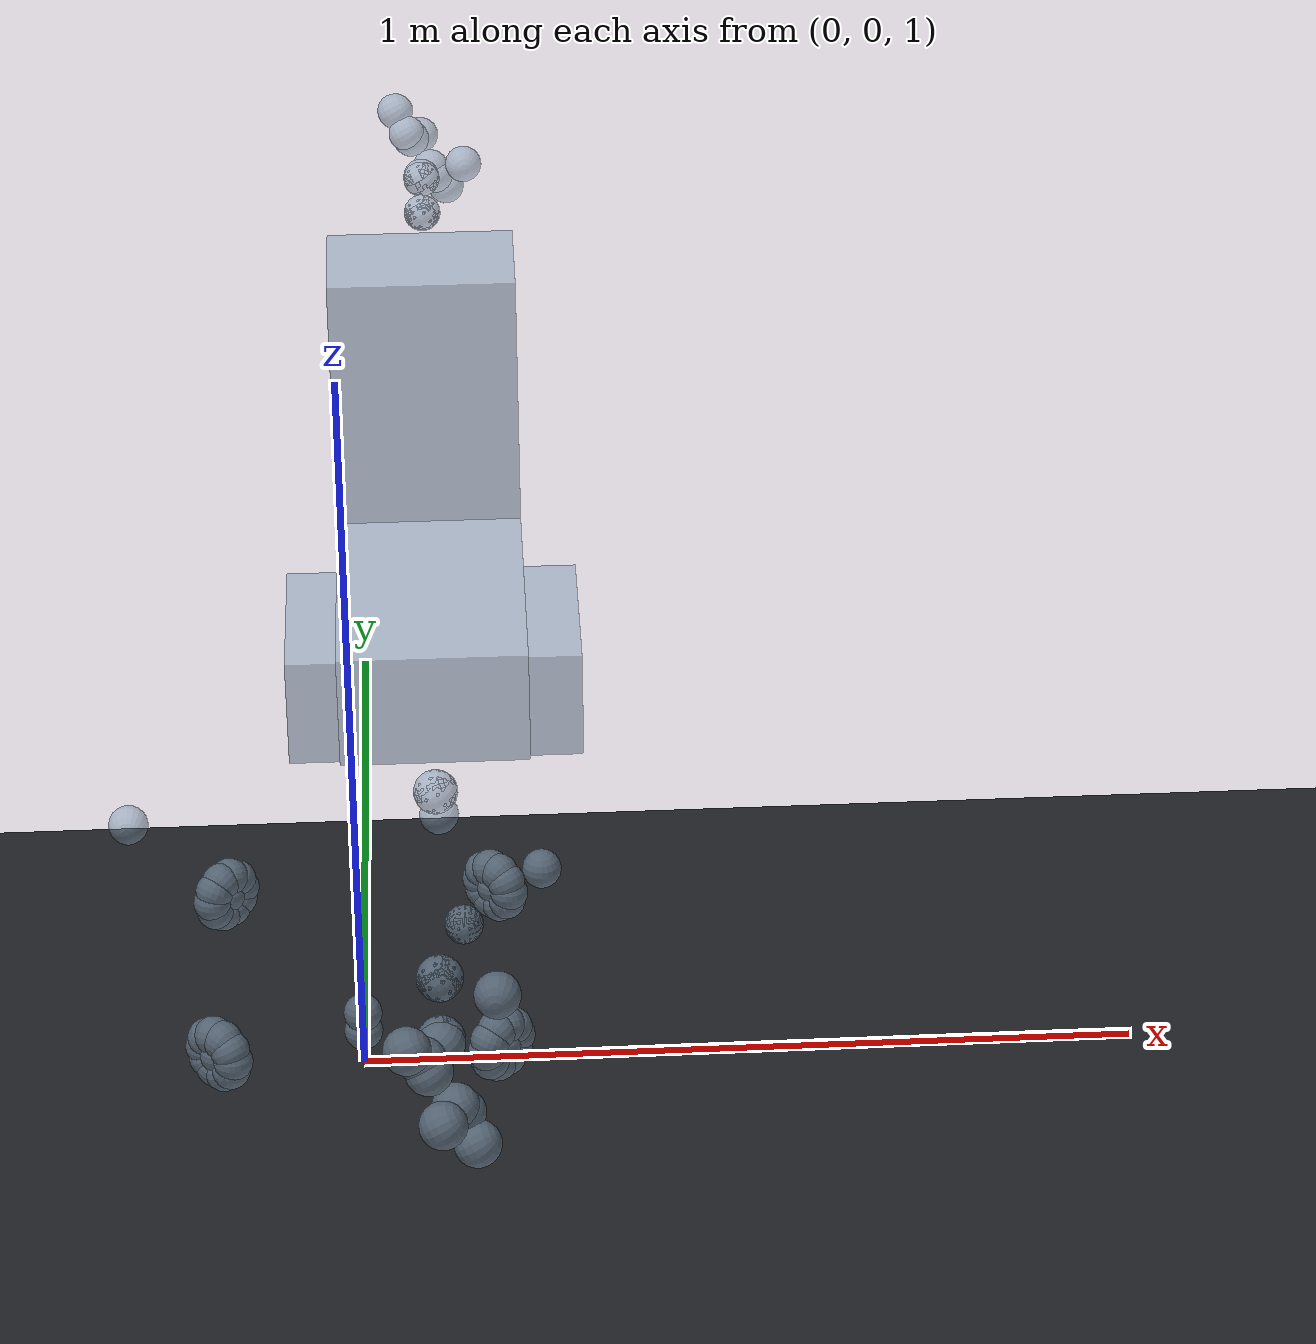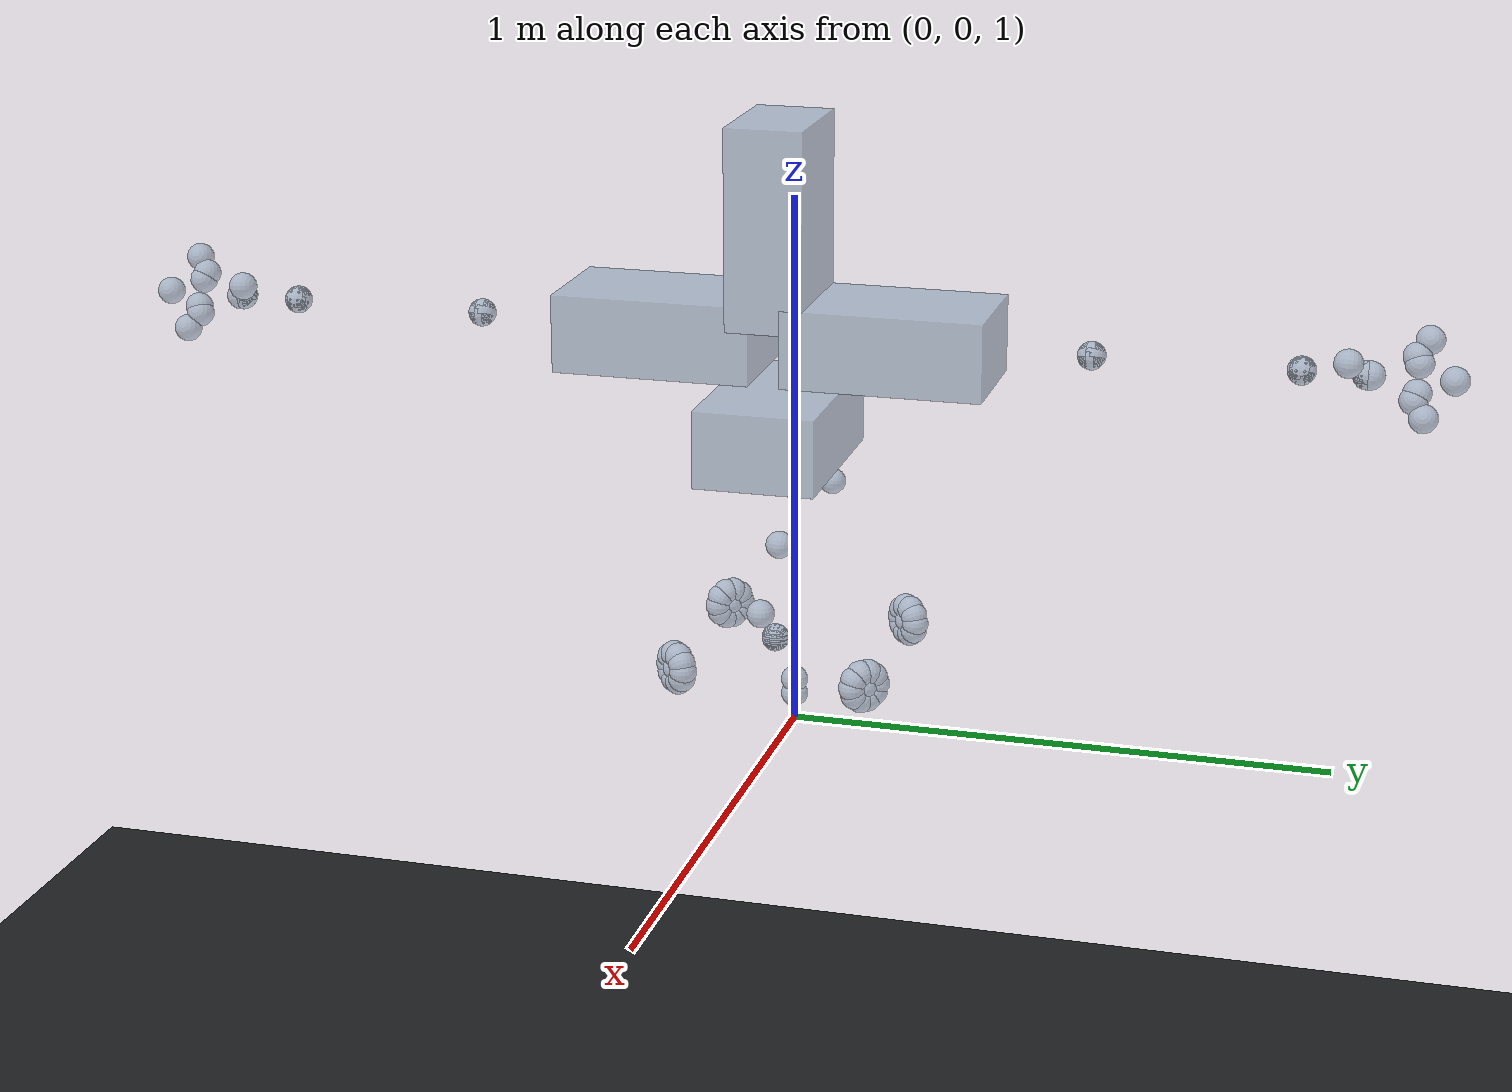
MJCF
<?xml version='1.0' encoding='utf-8'?>
<mujoco model="galbot_g1">
  <compiler angle="radian" />
  <option timestep="0.008333333" gravity="0 0 -9.81" />
  <default>
    <joint damping="0.3" armature="0.01" />
    <geom friction="0.8 0.01 0.001" density="250" />
  </default>
  <worldbody>
    <geom name="floor" type="plane" size="3 3 0.02" rgba="0.12 0.13 0.14 1" />
    <body name="base_footprint" pos="0 0 1.05">
      <freejoint name="base_footprint_freejoint" />
      <geom name="base_footprint_proxy" type="sphere" size="0.025" rgba="0.55 0.65 0.75 0.55" />
      <body name="base_link" pos="0 0 0.028166" quat="1 0 0 0">
        <geom name="base_link_proxy" type="sphere" size="0.025" rgba="0.55 0.65 0.75 0.55" />
        <body name="omni_chassis_base_link" pos="0 0 0" quat="1 0 0 0">
          <geom name="omni_chassis_base_link_proxy" type="sphere" size="0.025" rgba="0.55 0.65 0.75 0.55" />
          <body name="omni_chassis_leg_mount_link" pos="0.134 0 0.1325" quat="1 0 0 0">
            <geom name="omni_chassis_leg_mount_link_proxy" type="sphere" size="0.025" rgba="0.55 0.65 0.75 0.55" />
            <body name="leg_base_link" pos="0 0 0" quat="1 0 0 0">
              <geom name="leg_base_link_proxy" type="sphere" size="0.025" rgba="0.55 0.65 0.75 0.55" />
              <body name="leg_link1" pos="0 0 0" quat="-0.1352789408 0.1352789408 0.6940458257 0.6940458257">
                <joint name="leg_joint1" type="hinge" axis="0 0 1" damping="0.3" armature="0.01" limited="true" range="0 0.9374" />
                <geom name="leg_link1_proxy" type="sphere" size="0.025" rgba="0.55 0.65 0.75 0.55" />
                <body name="leg_link2" pos="0.45 0 0" quat="0 0.1913097075 0.9815297223 0">
                  <joint name="leg_joint2" type="hinge" axis="0 0 1" damping="0.3" armature="0.01" limited="true" range="0 2.5847" />
                  <geom name="leg_link2_proxy" type="sphere" size="0.025" rgba="0.55 0.65 0.75 0.55" />
                  <body name="leg_link3" pos="0.39 0 0" quat="0 0 1 0">
                    <joint name="leg_joint3" type="hinge" axis="0 0 1" damping="0.3" armature="0.01" limited="true" range="0 2.3262" />
                    <geom name="leg_link3_proxy" type="sphere" size="0.025" rgba="0.55 0.65 0.75 0.55" />
                    <body name="leg_link4" pos="0 0.224 0" quat="0.5 -0.5 -0.5 -0.5">
                      <joint name="leg_joint4" type="hinge" axis="0 0 1" damping="0.3" armature="0.01" limited="true" range="-1.5906 1.5906" />
                      <geom name="leg_link4_proxy" type="sphere" size="0.025" rgba="0.55 0.65 0.75 0.55" />
                      <body name="leg_link5" pos="0 0 0" quat="0.7071067812 0.7071067812 0 0">
                        <joint name="leg_joint5" type="hinge" axis="0 0 1" damping="0.3" armature="0.01" limited="true" range="-0.1645 0.1645" />
                        <geom name="leg_link5_proxy" type="sphere" size="0.025" rgba="0.55 0.65 0.75 0.55" />
                        <body name="leg_end_effector_mount_link" pos="0 0 0" quat="1 0 0 0">
                          <geom name="leg_end_effector_mount_link_proxy" type="sphere" size="0.025" rgba="0.55 0.65 0.75 0.55" />
                          <body name="torso_base_link" pos="0 0 0" quat="1 0 0 0">
                            <geom name="torso_base_link_proxy" type="box" size="0.11 0.07 0.18" rgba="0.55 0.65 0.75 0.55" />
                            <body name="torso_head_mount_link" pos="0 0.37711 0" quat="0.5 -0.5 -0.5 -0.5">
                              <geom name="torso_head_mount_link_proxy" type="box" size="0.11 0.07 0.18" rgba="0.55 0.65 0.75 0.55" />
                              <body name="head_base_link" pos="0 0 0" quat="1 0 0 0">
                                <geom name="head_base_link_proxy" type="sphere" size="0.055" rgba="0.55 0.65 0.75 0.55" />
                                <body name="head_link1" pos="0 0 0" quat="1 0 0 0">
                                  <joint name="head_joint1" type="hinge" axis="0 0 1" damping="0.3" armature="0.01" limited="true" range="-1.5208 1.5208" />
                                  <geom name="head_link1_proxy" type="sphere" size="0.055" rgba="0.55 0.65 0.75 0.55" />
                                  <body name="head_link2" pos="0 0 0" quat="0.7071067812 -0.7071067812 0 0">
                                    <joint name="head_joint2" type="hinge" axis="0 0 1" damping="0.3" armature="0.01" limited="true" range="-0.2143461 0.4935988" />
                                    <geom name="head_link2_proxy" type="sphere" size="0.055" rgba="0.55 0.65 0.75 0.55" />
                                    <body name="head_end_effector_mount_link" pos="0 0 0" quat="1 0 0 0">
                                      <geom name="head_end_effector_mount_link_proxy" type="sphere" size="0.055" rgba="0.55 0.65 0.75 0.55" />
                                    </body>
                                  </body>
                                </body>
                              </body>
                            </body>
                            <body name="torso_left_arm_mount_link" pos="0.20843 0.172 0" quat="0.7071067812 0 0.7071067812 0">
                              <geom name="torso_left_arm_mount_link_proxy" type="box" size="0.11 0.07 0.18" rgba="0.55 0.65 0.75 0.55" />
                              <body name="left_arm_base_link" pos="0 0 0" quat="1 0 0 0">
                                <geom name="left_arm_base_link_proxy" type="sphere" size="0.025" rgba="0.55 0.65 0.75 0.55" />
                                <body name="left_arm_link1" pos="0 0 0" quat="0.9659258263 0 0 0.2588190451">
                                  <joint name="left_arm_joint1" type="hinge" axis="0 0 1" damping="0.3" armature="0.01" limited="true" range="-3.00432619 3.00432619" />
                                  <geom name="left_arm_link1_proxy" type="sphere" size="0.025" rgba="0.55 0.65 0.75 0.55" />
                                  <body name="left_arm_link2" pos="0 0 0" quat="0 0 0.7071067812 0.7071067812">
                                    <joint name="left_arm_joint2" type="hinge" axis="0 0 1" damping="0.3" armature="0.01" limited="true" range="-1.608062789 1.608062789" />
                                    <geom name="left_arm_link2_proxy" type="sphere" size="0.025" rgba="0.55 0.65 0.75 0.55" />
                                    <body name="left_arm_link3" pos="0 0.35 0" quat="0.3535533906 -0.3535533906 0.6123724357 0.6123724357">
                                      <joint name="left_arm_joint3" type="hinge" axis="0 0 1" damping="0.3" armature="0.01" limited="true" range="-2.916972222 2.916972222" />
                                      <geom name="left_arm_link3_proxy" type="sphere" size="0.025" rgba="0.55 0.65 0.75 0.55" />
                                      <body name="left_arm_link4" pos="0 0 0" quat="0 0 0.7071067812 0.7071067812">
                                        <joint name="left_arm_joint4" type="hinge" axis="0 0 1" damping="0.3" armature="0.01" limited="true" range="-2.567993878 1.869862177" />
                                        <geom name="left_arm_link4_proxy" type="sphere" size="0.025" rgba="0.55 0.65 0.75 0.55" />
                                        <body name="left_arm_link5" pos="0 0.36 0" quat="0.7071067812 -0.7071067812 0 0">
                                          <joint name="left_arm_joint5" type="hinge" axis="0 0 1" damping="0.3" armature="0.01" limited="true" range="-2.916972222 2.916972222" />
                                          <geom name="left_arm_link5_proxy" type="sphere" size="0.025" rgba="0.55 0.65 0.75 0.55" />
                                          <body name="left_arm_link6" pos="0 0 0" quat="-0.5 -0.5 -0.5 0.5">
                                            <joint name="left_arm_joint6" type="hinge" axis="0 0 1" damping="0.3" armature="0.01" limited="true" range="-0.822664626 0.7353981634" />
                                            <geom name="left_arm_link6_proxy" type="sphere" size="0.025" rgba="0.55 0.65 0.75 0.55" />
                                            <body name="left_arm_link7" pos="0 0 0" quat="0.7071067812 0.7071067812 0 0">
                                              <joint name="left_arm_joint7" type="hinge" axis="0 0 1" damping="0.3" armature="0.01" limited="true" range="-1.538202778 1.538202778" />
                                              <geom name="left_arm_link7_proxy" type="sphere" size="0.025" rgba="0.55 0.65 0.75 0.55" />
                                              <body name="left_arm_end_effector_mount_link" pos="-0.10926 0 0" quat="0 0 1 0">
                                                <geom name="left_arm_end_effector_mount_link_proxy" type="sphere" size="0.025" rgba="0.55 0.65 0.75 0.55" />
                                                <body name="left_gripper_flange_link" pos="0 0 0" quat="0.7071067812 0.7071067812 0 0">
                                                  <geom name="left_gripper_flange_link_proxy" type="sphere" size="0.025" rgba="0.55 0.65 0.75 0.55" />
                                                  <body name="left_gripper_base_link" pos="0.0065 0 0" quat="1 0 0 0">
                                                    <geom name="left_gripper_base_link_proxy" type="sphere" size="0.025" rgba="0.55 0.65 0.75 0.55" />
                                                    <body name="left_gripper_r_knuckle_link" pos="0.0745 0 0.0385" quat="0.5741606636 0.5741606636 -0.4127221007 0.4127221007">
                                                      <joint name="left_gripper_joint" type="hinge" axis="0 0 -1" damping="0.3" armature="0.01" limited="true" range="0 1.703" />
                                                      <geom name="left_gripper_r_knuckle_link_proxy" type="sphere" size="0.025" rgba="0.55 0.65 0.75 0.55" />
                                                    </body>
                                                    <body name="left_gripper_r_inner_knuckle_link" pos="0.079 0 0.026" quat="0.5741606636 0.5741606636 -0.4127221007 0.4127221007">
                                                      <joint name="left_gripper_r_inner_knuckle_joint" type="hinge" axis="0 0 1" damping="0.3" armature="0.01" limited="true" range="-3.13 3.13" />
                                                      <geom name="left_gripper_r_inner_knuckle_link_proxy" type="sphere" size="0.025" rgba="0.55 0.65 0.75 0.55" />
                                                      <body name="left_gripper_r_finger_link" pos="0.045 0 0" quat="0.8119857974 0 0 -0.5836771923">
                                                        <joint name="left_gripper_r_finger_joint" type="hinge" axis="0 0 1" damping="0.3" armature="0.01" limited="true" range="-3.13 3.13" />
                                                        <geom name="left_gripper_r_finger_link_proxy" type="sphere" size="0.025" rgba="0.55 0.65 0.75 0.55" />
                                                      </body>
                                                    </body>
                                                    <body name="left_gripper_l_knuckle_link" pos="0.0745 0 -0.0385" quat="0.5741606636 0.5741606636 0.4127221007 -0.4127221007">
                                                      <joint name="left_gripper_l_knuckle_joint" type="hinge" axis="0 0 1" damping="0.3" armature="0.01" limited="true" range="-3.13 3.13" />
                                                      <geom name="left_gripper_l_knuckle_link_proxy" type="sphere" size="0.025" rgba="0.55 0.65 0.75 0.55" />
                                                    </body>
                                                    <body name="left_gripper_l_inner_knuckle_link" pos="0.079 0 -0.026" quat="0.5741606636 0.5741606636 0.4127221007 -0.4127221007">
                                                      <joint name="left_gripper_l_inner_knuckle_joint" type="hinge" axis="0 0 1" damping="0.3" armature="0.01" limited="true" range="-3.13 3.13" />
                                                      <geom name="left_gripper_l_inner_knuckle_link_proxy" type="sphere" size="0.025" rgba="0.55 0.65 0.75 0.55" />
                                                      <body name="left_gripper_l_finger_link" pos="0.045 0 0" quat="0.8119857974 0 0 0.5836771923">
                                                        <joint name="left_gripper_l_finger_joint" type="hinge" axis="0 0 1" damping="0.3" armature="0.01" limited="true" range="-3.13 3.13" />
                                                        <geom name="left_gripper_l_finger_link_proxy" type="sphere" size="0.025" rgba="0.55 0.65 0.75 0.55" />
                                                      </body>
                                                    </body>
                                                    <body name="left_gripper_tcp_link" pos="0.13996 0 0" quat="0.7071067812 0.7071067812 0 0">
                                                      <geom name="left_gripper_tcp_link_proxy" type="sphere" size="0.025" rgba="0.55 0.65 0.75 0.55" />
                                                    </body>
                                                  </body>
                                                </body>
                                              </body>
                                              <body name="left_arm_wrist_camera_stand" pos="0 0 0" quat="1 0 0 0">
                                                <geom name="left_arm_wrist_camera_stand_proxy" type="sphere" size="0.025" rgba="0.55 0.65 0.75 0.55" />
                                                <body name="left_wrist_camera_link" pos="-0.0822 0 -0.06842" quat="0 -0.6745818893 0 0.7382000234">
                                                  <geom name="left_wrist_camera_link_proxy" type="sphere" size="0.025" rgba="0.55 0.65 0.75 0.55" />
                                                </body>
                                              </body>
                                            </body>
                                          </body>
                                        </body>
                                      </body>
                                    </body>
                                  </body>
                                </body>
                              </body>
                            </body>
                            <body name="torso_right_arm_mount_link" pos="-0.20843 0.172 0" quat="0 0.7071067812 0 -0.7071067812">
                              <geom name="torso_right_arm_mount_link_proxy" type="box" size="0.11 0.07 0.18" rgba="0.55 0.65 0.75 0.55" />
                              <body name="right_arm_base_link" pos="0 0 0" quat="1 0 0 0">
                                <geom name="right_arm_base_link_proxy" type="sphere" size="0.025" rgba="0.55 0.65 0.75 0.55" />
                                <body name="right_arm_link1" pos="0 0 0" quat="0.9659258263 0 0 -0.2588190451">
                                  <joint name="right_arm_joint1" type="hinge" axis="0 0 1" damping="0.3" armature="0.01" limited="true" range="-3.00432619 3.00432619" />
                                  <geom name="right_arm_link1_proxy" type="sphere" size="0.025" rgba="0.55 0.65 0.75 0.55" />
                                  <body name="right_arm_link2" pos="0 0 0" quat="0 0 0.7071067812 -0.7071067812">
                                    <joint name="right_arm_joint2" type="hinge" axis="0 0 1" damping="0.3" armature="0.01" limited="true" range="-1.608062789 1.608062789" />
                                    <geom name="right_arm_link2_proxy" type="sphere" size="0.025" rgba="0.55 0.65 0.75 0.55" />
                                    <body name="right_arm_link3" pos="0 -0.35 0" quat="0.3535533906 0.3535533906 0.6123724357 -0.6123724357">
                                      <joint name="right_arm_joint3" type="hinge" axis="0 0 1" damping="0.3" armature="0.01" limited="true" range="-2.916972222 2.916972222" />
                                      <geom name="right_arm_link3_proxy" type="sphere" size="0.025" rgba="0.55 0.65 0.75 0.55" />
                                      <body name="right_arm_link4" pos="0 0 0" quat="0 0 -0.7071067812 0.7071067812">
                                        <joint name="right_arm_joint4" type="hinge" axis="0 0 1" damping="0.3" armature="0.01" limited="true" range="-1.869862177 2.567993878" />
                                        <geom name="right_arm_link4_proxy" type="sphere" size="0.025" rgba="0.55 0.65 0.75 0.55" />
                                        <body name="right_arm_link5" pos="0 -0.36 0" quat="0 0 0.7071067812 -0.7071067812">
                                          <joint name="right_arm_joint5" type="hinge" axis="0 0 1" damping="0.3" armature="0.01" limited="true" range="-2.916972222 2.916972222" />
                                          <geom name="right_arm_link5_proxy" type="sphere" size="0.025" rgba="0.55 0.65 0.75 0.55" />
                                          <body name="right_arm_link6" pos="0 0 0" quat="-0.5 -0.5 -0.5 0.5">
                                            <joint name="right_arm_joint6" type="hinge" axis="0 0 1" damping="0.3" armature="0.01" limited="true" range="-0.7353981634 0.822664626" />
                                            <geom name="right_arm_link6_proxy" type="sphere" size="0.025" rgba="0.55 0.65 0.75 0.55" />
                                            <body name="right_arm_link7" pos="0 0 0" quat="0.7071067812 -0.7071067812 0 0">
                                              <joint name="right_arm_joint7" type="hinge" axis="0 0 1" damping="0.3" armature="0.01" limited="true" range="-1.538202778 1.538202778" />
                                              <geom name="right_arm_link7_proxy" type="sphere" size="0.025" rgba="0.55 0.65 0.75 0.55" />
                                              <body name="right_arm_end_effector_mount_link" pos="-0.10926 0 0" quat="0 0 1 0">
                                                <geom name="right_arm_end_effector_mount_link_proxy" type="sphere" size="0.025" rgba="0.55 0.65 0.75 0.55" />
                                                <body name="right_gripper_flange_link" pos="0 0 0" quat="0.7071067812 0.7071067812 0 0">
                                                  <geom name="right_gripper_flange_link_proxy" type="sphere" size="0.025" rgba="0.55 0.65 0.75 0.55" />
                                                  <body name="right_gripper_base_link" pos="0.0065 0 0" quat="1 0 0 0">
                                                    <geom name="right_gripper_base_link_proxy" type="sphere" size="0.025" rgba="0.55 0.65 0.75 0.55" />
                                                    <body name="right_gripper_r_knuckle_link" pos="0.0745 0 0.0385" quat="0.5741606636 0.5741606636 -0.4127221007 0.4127221007">
                                                      <joint name="right_gripper_joint" type="hinge" axis="0 0 -1" damping="0.3" armature="0.01" limited="true" range="0 1.703" />
                                                      <geom name="right_gripper_r_knuckle_link_proxy" type="sphere" size="0.025" rgba="0.55 0.65 0.75 0.55" />
                                                    </body>
                                                    <body name="right_gripper_r_inner_knuckle_link" pos="0.079 0 0.026" quat="0.5741606636 0.5741606636 -0.4127221007 0.4127221007">
                                                      <joint name="right_gripper_r_inner_knuckle_joint" type="hinge" axis="0 0 1" damping="0.3" armature="0.01" limited="true" range="-3.13 3.13" />
                                                      <geom name="right_gripper_r_inner_knuckle_link_proxy" type="sphere" size="0.025" rgba="0.55 0.65 0.75 0.55" />
                                                      <body name="right_gripper_r_finger_link" pos="0.045 0 0" quat="0.8119857974 0 0 -0.5836771923">
                                                        <joint name="right_gripper_r_finger_joint" type="hinge" axis="0 0 1" damping="0.3" armature="0.01" limited="true" range="-3.13 3.13" />
                                                        <geom name="right_gripper_r_finger_link_proxy" type="sphere" size="0.025" rgba="0.55 0.65 0.75 0.55" />
                                                      </body>
                                                    </body>
                                                    <body name="right_gripper_l_knuckle_link" pos="0.0745 0 -0.0385" quat="0.5741606636 0.5741606636 0.4127221007 -0.4127221007">
                                                      <joint name="right_gripper_l_knuckle_joint" type="hinge" axis="0 0 1" damping="0.3" armature="0.01" limited="true" range="-3.13 3.13" />
                                                      <geom name="right_gripper_l_knuckle_link_proxy" type="sphere" size="0.025" rgba="0.55 0.65 0.75 0.55" />
                                                    </body>
                                                    <body name="right_gripper_l_inner_knuckle_link" pos="0.079 0 -0.026" quat="0.5741606636 0.5741606636 0.4127221007 -0.4127221007">
                                                      <joint name="right_gripper_l_inner_knuckle_joint" type="hinge" axis="0 0 1" damping="0.3" armature="0.01" limited="true" range="-3.13 3.13" />
                                                      <geom name="right_gripper_l_inner_knuckle_link_proxy" type="sphere" size="0.025" rgba="0.55 0.65 0.75 0.55" />
                                                      <body name="right_gripper_l_finger_link" pos="0.045 0 0" quat="0.8119857974 0 0 0.5836771923">
                                                        <joint name="right_gripper_l_finger_joint" type="hinge" axis="0 0 1" damping="0.3" armature="0.01" limited="true" range="-3.13 3.13" />
                                                        <geom name="right_gripper_l_finger_link_proxy" type="sphere" size="0.025" rgba="0.55 0.65 0.75 0.55" />
                                                      </body>
                                                    </body>
                                                    <body name="right_gripper_tcp_link" pos="0.13996 0 0" quat="0.7071067812 0.7071067812 0 0">
                                                      <geom name="right_gripper_tcp_link_proxy" type="sphere" size="0.025" rgba="0.55 0.65 0.75 0.55" />
                                                    </body>
                                                  </body>
                                                </body>
                                              </body>
                                              <body name="right_arm_wrist_camera_stand" pos="0 0 0" quat="1 0 0 0">
                                                <geom name="right_arm_wrist_camera_stand_proxy" type="sphere" size="0.025" rgba="0.55 0.65 0.75 0.55" />
                                                <body name="right_wrist_camera_link" pos="-0.0822 0 -0.06842" quat="0 -0.6745818893 0 0.7382000234">
                                                  <geom name="right_wrist_camera_link_proxy" type="sphere" size="0.025" rgba="0.55 0.65 0.75 0.55" />
                                                </body>
                                              </body>
                                            </body>
                                          </body>
                                        </body>
                                      </body>
                                    </body>
                                  </body>
                                </body>
                              </body>
                            </body>
                          </body>
                        </body>
                      </body>
                    </body>
                  </body>
                </body>
              </body>
            </body>
          </body>
          <body name="wheel_1" pos="0.176493 0.176493 0.071834" quat="-0.3826834324 0 0 0.9238795325">
            <joint name="wheel1_joint" type="hinge" axis="1 0 0" damping="0.3" armature="0.01" />
            <geom name="wheel_1_proxy" type="sphere" size="0.025" rgba="0.55 0.65 0.75 0.55" />
            <body name="wheel_1_passive_0" pos="0 0.025 0" quat="1 0 0 0">
              <joint name="wheel_1_passive_0_joint" type="hinge" axis="0 0 1" damping="0.3" armature="0.01" />
              <geom name="wheel_1_passive_0_proxy" type="sphere" size="0.025" rgba="0.55 0.65 0.75 0.55" />
            </body>
            <body name="wheel_1_passive_1" pos="0 0.02022542486 0.01469463131" quat="0.9510565163 0.3090169944 0 0">
              <joint name="wheel_1_passive_1_joint" type="hinge" axis="0 0 1" damping="0.3" armature="0.01" />
              <geom name="wheel_1_passive_1_proxy" type="sphere" size="0.025" rgba="0.55 0.65 0.75 0.55" />
            </body>
            <body name="wheel_1_passive_2" pos="0 0.007725424859 0.02377641291" quat="0.8090169944 0.5877852523 0 0">
              <joint name="wheel_1_passive_2_joint" type="hinge" axis="0 0 1" damping="0.3" armature="0.01" />
              <geom name="wheel_1_passive_2_proxy" type="sphere" size="0.025" rgba="0.55 0.65 0.75 0.55" />
            </body>
            <body name="wheel_1_passive_3" pos="0 -0.007725424859 0.02377641291" quat="0.5877852523 0.8090169944 0 0">
              <joint name="wheel_1_passive_3_joint" type="hinge" axis="0 0 1" damping="0.3" armature="0.01" />
              <geom name="wheel_1_passive_3_proxy" type="sphere" size="0.025" rgba="0.55 0.65 0.75 0.55" />
            </body>
            <body name="wheel_1_passive_4" pos="0 -0.02022542486 0.01469463131" quat="0.3090169944 0.9510565163 0 0">
              <joint name="wheel_1_passive_4_joint" type="hinge" axis="0 0 1" damping="0.3" armature="0.01" />
              <geom name="wheel_1_passive_4_proxy" type="sphere" size="0.025" rgba="0.55 0.65 0.75 0.55" />
            </body>
            <body name="wheel_1_passive_5" pos="0 -0.025 0" quat="0 1 0 0">
              <joint name="wheel_1_passive_5_joint" type="hinge" axis="0 0 1" damping="0.3" armature="0.01" />
              <geom name="wheel_1_passive_5_proxy" type="sphere" size="0.025" rgba="0.55 0.65 0.75 0.55" />
            </body>
            <body name="wheel_1_passive_6" pos="0 -0.02022542486 -0.01469463131" quat="-0.3090169944 0.9510565163 0 0">
              <joint name="wheel_1_passive_6_joint" type="hinge" axis="0 0 1" damping="0.3" armature="0.01" />
              <geom name="wheel_1_passive_6_proxy" type="sphere" size="0.025" rgba="0.55 0.65 0.75 0.55" />
            </body>
            <body name="wheel_1_passive_7" pos="0 -0.007725424859 -0.02377641291" quat="0.5877852523 -0.8090169944 0 0">
              <joint name="wheel_1_passive_7_joint" type="hinge" axis="0 0 1" damping="0.3" armature="0.01" />
              <geom name="wheel_1_passive_7_proxy" type="sphere" size="0.025" rgba="0.55 0.65 0.75 0.55" />
            </body>
            <body name="wheel_1_passive_8" pos="0 0.007725424859 -0.02377641291" quat="0.8090169944 -0.5877852523 0 0">
              <joint name="wheel_1_passive_8_joint" type="hinge" axis="0 0 1" damping="0.3" armature="0.01" />
              <geom name="wheel_1_passive_8_proxy" type="sphere" size="0.025" rgba="0.55 0.65 0.75 0.55" />
            </body>
            <body name="wheel_1_passive_9" pos="0 0.02022542486 -0.01469463131" quat="0.9510565163 -0.3090169944 0 0">
              <joint name="wheel_1_passive_9_joint" type="hinge" axis="0 0 1" damping="0.3" armature="0.01" />
              <geom name="wheel_1_passive_9_proxy" type="sphere" size="0.025" rgba="0.55 0.65 0.75 0.55" />
            </body>
          </body>
          <body name="wheel_2" pos="-0.176493 0.176493 0.071834" quat="0.9238795325 0 0 -0.3826834324">
            <joint name="wheel2_joint" type="hinge" axis="1 0 0" damping="0.3" armature="0.01" />
            <geom name="wheel_2_proxy" type="sphere" size="0.025" rgba="0.55 0.65 0.75 0.55" />
            <body name="wheel_2_passive_0" pos="0 0.025 0" quat="1 0 0 0">
              <joint name="wheel_2_passive_0_joint" type="hinge" axis="0 0 1" damping="0.3" armature="0.01" />
              <geom name="wheel_2_passive_0_proxy" type="sphere" size="0.025" rgba="0.55 0.65 0.75 0.55" />
            </body>
            <body name="wheel_2_passive_1" pos="0 0.02022542486 0.01469463131" quat="0.9510565163 0.3090169944 0 0">
              <joint name="wheel_2_passive_1_joint" type="hinge" axis="0 0 1" damping="0.3" armature="0.01" />
              <geom name="wheel_2_passive_1_proxy" type="sphere" size="0.025" rgba="0.55 0.65 0.75 0.55" />
            </body>
            <body name="wheel_2_passive_2" pos="0 0.007725424859 0.02377641291" quat="0.8090169944 0.5877852523 0 0">
              <joint name="wheel_2_passive_2_joint" type="hinge" axis="0 0 1" damping="0.3" armature="0.01" />
              <geom name="wheel_2_passive_2_proxy" type="sphere" size="0.025" rgba="0.55 0.65 0.75 0.55" />
            </body>
            <body name="wheel_2_passive_3" pos="0 -0.007725424859 0.02377641291" quat="0.5877852523 0.8090169944 0 0">
              <joint name="wheel_2_passive_3_joint" type="hinge" axis="0 0 1" damping="0.3" armature="0.01" />
              <geom name="wheel_2_passive_3_proxy" type="sphere" size="0.025" rgba="0.55 0.65 0.75 0.55" />
            </body>
            <body name="wheel_2_passive_4" pos="0 -0.02022542486 0.01469463131" quat="0.3090169944 0.9510565163 0 0">
              <joint name="wheel_2_passive_4_joint" type="hinge" axis="0 0 1" damping="0.3" armature="0.01" />
              <geom name="wheel_2_passive_4_proxy" type="sphere" size="0.025" rgba="0.55 0.65 0.75 0.55" />
            </body>
            <body name="wheel_2_passive_5" pos="0 -0.025 0" quat="0 1 0 0">
              <joint name="wheel_2_passive_5_joint" type="hinge" axis="0 0 1" damping="0.3" armature="0.01" />
              <geom name="wheel_2_passive_5_proxy" type="sphere" size="0.025" rgba="0.55 0.65 0.75 0.55" />
            </body>
            <body name="wheel_2_passive_6" pos="0 -0.02022542486 -0.01469463131" quat="-0.3090169944 0.9510565163 0 0">
              <joint name="wheel_2_passive_6_joint" type="hinge" axis="0 0 1" damping="0.3" armature="0.01" />
              <geom name="wheel_2_passive_6_proxy" type="sphere" size="0.025" rgba="0.55 0.65 0.75 0.55" />
            </body>
            <body name="wheel_2_passive_7" pos="0 -0.007725424859 -0.02377641291" quat="0.5877852523 -0.8090169944 0 0">
              <joint name="wheel_2_passive_7_joint" type="hinge" axis="0 0 1" damping="0.3" armature="0.01" />
              <geom name="wheel_2_passive_7_proxy" type="sphere" size="0.025" rgba="0.55 0.65 0.75 0.55" />
            </body>
            <body name="wheel_2_passive_8" pos="0 0.007725424859 -0.02377641291" quat="0.8090169944 -0.5877852523 0 0">
              <joint name="wheel_2_passive_8_joint" type="hinge" axis="0 0 1" damping="0.3" armature="0.01" />
              <geom name="wheel_2_passive_8_proxy" type="sphere" size="0.025" rgba="0.55 0.65 0.75 0.55" />
            </body>
            <body name="wheel_2_passive_9" pos="0 0.02022542486 -0.01469463131" quat="0.9510565163 -0.3090169944 0 0">
              <joint name="wheel_2_passive_9_joint" type="hinge" axis="0 0 1" damping="0.3" armature="0.01" />
              <geom name="wheel_2_passive_9_proxy" type="sphere" size="0.025" rgba="0.55 0.65 0.75 0.55" />
            </body>
          </body>
          <body name="wheel_3" pos="-0.176493 -0.176493 0.071834" quat="0.9238795325 0 0 0.3826834324">
            <joint name="wheel3_joint" type="hinge" axis="1 0 0" damping="0.3" armature="0.01" />
            <geom name="wheel_3_proxy" type="sphere" size="0.025" rgba="0.55 0.65 0.75 0.55" />
            <body name="wheel_3_passive_0" pos="0 0.025 0" quat="1 0 0 0">
              <joint name="wheel_3_passive_0_joint" type="hinge" axis="0 0 1" damping="0.3" armature="0.01" />
              <geom name="wheel_3_passive_0_proxy" type="sphere" size="0.025" rgba="0.55 0.65 0.75 0.55" />
            </body>
            <body name="wheel_3_passive_1" pos="0 0.02022542486 0.01469463131" quat="0.9510565163 0.3090169944 0 0">
              <joint name="wheel_3_passive_1_joint" type="hinge" axis="0 0 1" damping="0.3" armature="0.01" />
              <geom name="wheel_3_passive_1_proxy" type="sphere" size="0.025" rgba="0.55 0.65 0.75 0.55" />
            </body>
            <body name="wheel_3_passive_2" pos="0 0.007725424859 0.02377641291" quat="0.8090169944 0.5877852523 0 0">
              <joint name="wheel_3_passive_2_joint" type="hinge" axis="0 0 1" damping="0.3" armature="0.01" />
              <geom name="wheel_3_passive_2_proxy" type="sphere" size="0.025" rgba="0.55 0.65 0.75 0.55" />
            </body>
            <body name="wheel_3_passive_3" pos="0 -0.007725424859 0.02377641291" quat="0.5877852523 0.8090169944 0 0">
              <joint name="wheel_3_passive_3_joint" type="hinge" axis="0 0 1" damping="0.3" armature="0.01" />
              <geom name="wheel_3_passive_3_proxy" type="sphere" size="0.025" rgba="0.55 0.65 0.75 0.55" />
            </body>
            <body name="wheel_3_passive_4" pos="0 -0.02022542486 0.01469463131" quat="0.3090169944 0.9510565163 0 0">
              <joint name="wheel_3_passive_4_joint" type="hinge" axis="0 0 1" damping="0.3" armature="0.01" />
              <geom name="wheel_3_passive_4_proxy" type="sphere" size="0.025" rgba="0.55 0.65 0.75 0.55" />
            </body>
            <body name="wheel_3_passive_5" pos="0 -0.025 0" quat="0 1 0 0">
              <joint name="wheel_3_passive_5_joint" type="hinge" axis="0 0 1" damping="0.3" armature="0.01" />
              <geom name="wheel_3_passive_5_proxy" type="sphere" size="0.025" rgba="0.55 0.65 0.75 0.55" />
            </body>
            <body name="wheel_3_passive_6" pos="0 -0.02022542486 -0.01469463131" quat="-0.3090169944 0.9510565163 0 0">
              <joint name="wheel_3_passive_6_joint" type="hinge" axis="0 0 1" damping="0.3" armature="0.01" />
              <geom name="wheel_3_passive_6_proxy" type="sphere" size="0.025" rgba="0.55 0.65 0.75 0.55" />
            </body>
            <body name="wheel_3_passive_7" pos="0 -0.007725424859 -0.02377641291" quat="0.5877852523 -0.8090169944 0 0">
              <joint name="wheel_3_passive_7_joint" type="hinge" axis="0 0 1" damping="0.3" armature="0.01" />
              <geom name="wheel_3_passive_7_proxy" type="sphere" size="0.025" rgba="0.55 0.65 0.75 0.55" />
            </body>
            <body name="wheel_3_passive_8" pos="0 0.007725424859 -0.02377641291" quat="0.8090169944 -0.5877852523 0 0">
              <joint name="wheel_3_passive_8_joint" type="hinge" axis="0 0 1" damping="0.3" armature="0.01" />
              <geom name="wheel_3_passive_8_proxy" type="sphere" size="0.025" rgba="0.55 0.65 0.75 0.55" />
            </body>
            <body name="wheel_3_passive_9" pos="0 0.02022542486 -0.01469463131" quat="0.9510565163 -0.3090169944 0 0">
              <joint name="wheel_3_passive_9_joint" type="hinge" axis="0 0 1" damping="0.3" armature="0.01" />
              <geom name="wheel_3_passive_9_proxy" type="sphere" size="0.025" rgba="0.55 0.65 0.75 0.55" />
            </body>
          </body>
          <body name="wheel_4" pos="0.176493 -0.176493 0.071834" quat="0.3826834324 0 0 0.9238795325">
            <joint name="wheel4_joint" type="hinge" axis="1 0 0" damping="0.3" armature="0.01" />
            <geom name="wheel_4_proxy" type="sphere" size="0.025" rgba="0.55 0.65 0.75 0.55" />
            <body name="wheel_4_passive_0" pos="0 0.025 0" quat="1 0 0 0">
              <joint name="wheel_4_passive_0_joint" type="hinge" axis="0 0 1" damping="0.3" armature="0.01" />
              <geom name="wheel_4_passive_0_proxy" type="sphere" size="0.025" rgba="0.55 0.65 0.75 0.55" />
            </body>
            <body name="wheel_4_passive_1" pos="0 0.02022542486 0.01469463131" quat="0.9510565163 0.3090169944 0 0">
              <joint name="wheel_4_passive_1_joint" type="hinge" axis="0 0 1" damping="0.3" armature="0.01" />
              <geom name="wheel_4_passive_1_proxy" type="sphere" size="0.025" rgba="0.55 0.65 0.75 0.55" />
            </body>
            <body name="wheel_4_passive_2" pos="0 0.007725424859 0.02377641291" quat="0.8090169944 0.5877852523 0 0">
              <joint name="wheel_4_passive_2_joint" type="hinge" axis="0 0 1" damping="0.3" armature="0.01" />
              <geom name="wheel_4_passive_2_proxy" type="sphere" size="0.025" rgba="0.55 0.65 0.75 0.55" />
            </body>
            <body name="wheel_4_passive_3" pos="0 -0.007725424859 0.02377641291" quat="0.5877852523 0.8090169944 0 0">
              <joint name="wheel_4_passive_3_joint" type="hinge" axis="0 0 1" damping="0.3" armature="0.01" />
              <geom name="wheel_4_passive_3_proxy" type="sphere" size="0.025" rgba="0.55 0.65 0.75 0.55" />
            </body>
            <body name="wheel_4_passive_4" pos="0 -0.02022542486 0.01469463131" quat="0.3090169944 0.9510565163 0 0">
              <joint name="wheel_4_passive_4_joint" type="hinge" axis="0 0 1" damping="0.3" armature="0.01" />
              <geom name="wheel_4_passive_4_proxy" type="sphere" size="0.025" rgba="0.55 0.65 0.75 0.55" />
            </body>
            <body name="wheel_4_passive_5" pos="0 -0.025 0" quat="0 1 0 0">
              <joint name="wheel_4_passive_5_joint" type="hinge" axis="0 0 1" damping="0.3" armature="0.01" />
              <geom name="wheel_4_passive_5_proxy" type="sphere" size="0.025" rgba="0.55 0.65 0.75 0.55" />
            </body>
            <body name="wheel_4_passive_6" pos="0 -0.02022542486 -0.01469463131" quat="-0.3090169944 0.9510565163 0 0">
              <joint name="wheel_4_passive_6_joint" type="hinge" axis="0 0 1" damping="0.3" armature="0.01" />
              <geom name="wheel_4_passive_6_proxy" type="sphere" size="0.025" rgba="0.55 0.65 0.75 0.55" />
            </body>
            <body name="wheel_4_passive_7" pos="0 -0.007725424859 -0.02377641291" quat="0.5877852523 -0.8090169944 0 0">
              <joint name="wheel_4_passive_7_joint" type="hinge" axis="0 0 1" damping="0.3" armature="0.01" />
              <geom name="wheel_4_passive_7_proxy" type="sphere" size="0.025" rgba="0.55 0.65 0.75 0.55" />
            </body>
            <body name="wheel_4_passive_8" pos="0 0.007725424859 -0.02377641291" quat="0.8090169944 -0.5877852523 0 0">
              <joint name="wheel_4_passive_8_joint" type="hinge" axis="0 0 1" damping="0.3" armature="0.01" />
              <geom name="wheel_4_passive_8_proxy" type="sphere" size="0.025" rgba="0.55 0.65 0.75 0.55" />
            </body>
            <body name="wheel_4_passive_9" pos="0 0.02022542486 -0.01469463131" quat="0.9510565163 -0.3090169944 0 0">
              <joint name="wheel_4_passive_9_joint" type="hinge" axis="0 0 1" damping="0.3" armature="0.01" />
              <geom name="wheel_4_passive_9_proxy" type="sphere" size="0.025" rgba="0.55 0.65 0.75 0.55" />
            </body>
          </body>
          <body name="chassis_lidar" pos="0.235 0 0.2144" quat="1 0 0 0">
            <geom name="chassis_lidar_proxy" type="sphere" size="0.025" rgba="0.55 0.65 0.75 0.55" />
          </body>
        </body>
      </body>
    </body>
  </worldbody>
  <actuator>
    <position name="leg_joint1_position" joint="leg_joint1" kp="15" ctrlrange="0 0.9374" />
    <position name="leg_joint2_position" joint="leg_joint2" kp="15" ctrlrange="0 2.5847" />
    <position name="leg_joint3_position" joint="leg_joint3" kp="15" ctrlrange="0 2.3262" />
    <position name="leg_joint4_position" joint="leg_joint4" kp="15" ctrlrange="-1.5906 1.5906" />
    <position name="leg_joint5_position" joint="leg_joint5" kp="15" ctrlrange="-0.1645 0.1645" />
    <position name="head_joint1_position" joint="head_joint1" kp="15" ctrlrange="-1.5208 1.5208" />
    <position name="head_joint2_position" joint="head_joint2" kp="15" ctrlrange="-0.2143461 0.4935988" />
    <position name="left_arm_joint1_position" joint="left_arm_joint1" kp="15" ctrlrange="-3.00432619 3.00432619" />
    <position name="left_arm_joint2_position" joint="left_arm_joint2" kp="15" ctrlrange="-1.608062789 1.608062789" />
    <position name="left_arm_joint3_position" joint="left_arm_joint3" kp="15" ctrlrange="-2.916972222 2.916972222" />
    <position name="left_arm_joint4_position" joint="left_arm_joint4" kp="15" ctrlrange="-2.567993878 1.869862177" />
    <position name="left_arm_joint5_position" joint="left_arm_joint5" kp="15" ctrlrange="-2.916972222 2.916972222" />
    <position name="left_arm_joint6_position" joint="left_arm_joint6" kp="15" ctrlrange="-0.822664626 0.7353981634" />
    <position name="left_arm_joint7_position" joint="left_arm_joint7" kp="15" ctrlrange="-1.538202778 1.538202778" />
    <position name="left_gripper_joint_position" joint="left_gripper_joint" kp="15" ctrlrange="0 1.703" />
    <position name="left_gripper_r_inner_knuckle_joint_position" joint="left_gripper_r_inner_knuckle_joint" kp="15" ctrlrange="-3.13 3.13" />
    <position name="left_gripper_r_finger_joint_position" joint="left_gripper_r_finger_joint" kp="15" ctrlrange="-3.13 3.13" />
    <position name="left_gripper_l_knuckle_joint_position" joint="left_gripper_l_knuckle_joint" kp="15" ctrlrange="-3.13 3.13" />
    <position name="left_gripper_l_inner_knuckle_joint_position" joint="left_gripper_l_inner_knuckle_joint" kp="15" ctrlrange="-3.13 3.13" />
    <position name="left_gripper_l_finger_joint_position" joint="left_gripper_l_finger_joint" kp="15" ctrlrange="-3.13 3.13" />
    <position name="right_arm_joint1_position" joint="right_arm_joint1" kp="15" ctrlrange="-3.00432619 3.00432619" />
    <position name="right_arm_joint2_position" joint="right_arm_joint2" kp="15" ctrlrange="-1.608062789 1.608062789" />
    <position name="right_arm_joint3_position" joint="right_arm_joint3" kp="15" ctrlrange="-2.916972222 2.916972222" />
    <position name="right_arm_joint4_position" joint="right_arm_joint4" kp="15" ctrlrange="-1.869862177 2.567993878" />
    <position name="right_arm_joint5_position" joint="right_arm_joint5" kp="15" ctrlrange="-2.916972222 2.916972222" />
    <position name="right_arm_joint6_position" joint="right_arm_joint6" kp="15" ctrlrange="-0.7353981634 0.822664626" />
    <position name="right_arm_joint7_position" joint="right_arm_joint7" kp="15" ctrlrange="-1.538202778 1.538202778" />
    <position name="right_gripper_joint_position" joint="right_gripper_joint" kp="15" ctrlrange="0 1.703" />
    <position name="right_gripper_r_inner_knuckle_joint_position" joint="right_gripper_r_inner_knuckle_joint" kp="15" ctrlrange="-3.13 3.13" />
    <position name="right_gripper_r_finger_joint_position" joint="right_gripper_r_finger_joint" kp="15" ctrlrange="-3.13 3.13" />
    <position name="right_gripper_l_knuckle_joint_position" joint="right_gripper_l_knuckle_joint" kp="15" ctrlrange="-3.13 3.13" />
    <position name="right_gripper_l_inner_knuckle_joint_position" joint="right_gripper_l_inner_knuckle_joint" kp="15" ctrlrange="-3.13 3.13" />
    <position name="right_gripper_l_finger_joint_position" joint="right_gripper_l_finger_joint" kp="15" ctrlrange="-3.13 3.13" />
    <position name="wheel1_joint_position" joint="wheel1_joint" kp="15" ctrlrange="-1 1" />
    <position name="wheel_1_passive_0_joint_position" joint="wheel_1_passive_0_joint" kp="15" ctrlrange="-1 1" />
    <position name="wheel_1_passive_1_joint_position" joint="wheel_1_passive_1_joint" kp="15" ctrlrange="-1 1" />
    <position name="wheel_1_passive_2_joint_position" joint="wheel_1_passive_2_joint" kp="15" ctrlrange="-1 1" />
    <position name="wheel_1_passive_3_joint_position" joint="wheel_1_passive_3_joint" kp="15" ctrlrange="-1 1" />
    <position name="wheel_1_passive_4_joint_position" joint="wheel_1_passive_4_joint" kp="15" ctrlrange="-1 1" />
    <position name="wheel_1_passive_5_joint_position" joint="wheel_1_passive_5_joint" kp="15" ctrlrange="-1 1" />
    <position name="wheel_1_passive_6_joint_position" joint="wheel_1_passive_6_joint" kp="15" ctrlrange="-1 1" />
    <position name="wheel_1_passive_7_joint_position" joint="wheel_1_passive_7_joint" kp="15" ctrlrange="-1 1" />
    <position name="wheel_1_passive_8_joint_position" joint="wheel_1_passive_8_joint" kp="15" ctrlrange="-1 1" />
    <position name="wheel_1_passive_9_joint_position" joint="wheel_1_passive_9_joint" kp="15" ctrlrange="-1 1" />
    <position name="wheel2_joint_position" joint="wheel2_joint" kp="15" ctrlrange="-1 1" />
    <position name="wheel_2_passive_0_joint_position" joint="wheel_2_passive_0_joint" kp="15" ctrlrange="-1 1" />
    <position name="wheel_2_passive_1_joint_position" joint="wheel_2_passive_1_joint" kp="15" ctrlrange="-1 1" />
    <position name="wheel_2_passive_2_joint_position" joint="wheel_2_passive_2_joint" kp="15" ctrlrange="-1 1" />
    <position name="wheel_2_passive_3_joint_position" joint="wheel_2_passive_3_joint" kp="15" ctrlrange="-1 1" />
    <position name="wheel_2_passive_4_joint_position" joint="wheel_2_passive_4_joint" kp="15" ctrlrange="-1 1" />
    <position name="wheel_2_passive_5_joint_position" joint="wheel_2_passive_5_joint" kp="15" ctrlrange="-1 1" />
    <position name="wheel_2_passive_6_joint_position" joint="wheel_2_passive_6_joint" kp="15" ctrlrange="-1 1" />
    <position name="wheel_2_passive_7_joint_position" joint="wheel_2_passive_7_joint" kp="15" ctrlrange="-1 1" />
    <position name="wheel_2_passive_8_joint_position" joint="wheel_2_passive_8_joint" kp="15" ctrlrange="-1 1" />
    <position name="wheel_2_passive_9_joint_position" joint="wheel_2_passive_9_joint" kp="15" ctrlrange="-1 1" />
    <position name="wheel3_joint_position" joint="wheel3_joint" kp="15" ctrlrange="-1 1" />
    <position name="wheel_3_passive_0_joint_position" joint="wheel_3_passive_0_joint" kp="15" ctrlrange="-1 1" />
    <position name="wheel_3_passive_1_joint_position" joint="wheel_3_passive_1_joint" kp="15" ctrlrange="-1 1" />
    <position name="wheel_3_passive_2_joint_position" joint="wheel_3_passive_2_joint" kp="15" ctrlrange="-1 1" />
    <position name="wheel_3_passive_3_joint_position" joint="wheel_3_passive_3_joint" kp="15" ctrlrange="-1 1" />
    <position name="wheel_3_passive_4_joint_position" joint="wheel_3_passive_4_joint" kp="15" ctrlrange="-1 1" />
    <position name="wheel_3_passive_5_joint_position" joint="wheel_3_passive_5_joint" kp="15" ctrlrange="-1 1" />
    <position name="wheel_3_passive_6_joint_position" joint="wheel_3_passive_6_joint" kp="15" ctrlrange="-1 1" />
    <position name="wheel_3_passive_7_joint_position" joint="wheel_3_passive_7_joint" kp="15" ctrlrange="-1 1" />
    <position name="wheel_3_passive_8_joint_position" joint="wheel_3_passive_8_joint" kp="15" ctrlrange="-1 1" />
    <position name="wheel_3_passive_9_joint_position" joint="wheel_3_passive_9_joint" kp="15" ctrlrange="-1 1" />
    <position name="wheel4_joint_position" joint="wheel4_joint" kp="15" ctrlrange="-1 1" />
    <position name="wheel_4_passive_0_joint_position" joint="wheel_4_passive_0_joint" kp="15" ctrlrange="-1 1" />
    <position name="wheel_4_passive_1_joint_position" joint="wheel_4_passive_1_joint" kp="15" ctrlrange="-1 1" />
    <position name="wheel_4_passive_2_joint_position" joint="wheel_4_passive_2_joint" kp="15" ctrlrange="-1 1" />
    <position name="wheel_4_passive_3_joint_position" joint="wheel_4_passive_3_joint" kp="15" ctrlrange="-1 1" />
    <position name="wheel_4_passive_4_joint_position" joint="wheel_4_passive_4_joint" kp="15" ctrlrange="-1 1" />
    <position name="wheel_4_passive_5_joint_position" joint="wheel_4_passive_5_joint" kp="15" ctrlrange="-1 1" />
    <position name="wheel_4_passive_6_joint_position" joint="wheel_4_passive_6_joint" kp="15" ctrlrange="-1 1" />
    <position name="wheel_4_passive_7_joint_position" joint="wheel_4_passive_7_joint" kp="15" ctrlrange="-1 1" />
    <position name="wheel_4_passive_8_joint_position" joint="wheel_4_passive_8_joint" kp="15" ctrlrange="-1 1" />
    <position name="wheel_4_passive_9_joint_position" joint="wheel_4_passive_9_joint" kp="15" ctrlrange="-1 1" />
  </actuator>
  <sensor>
    <jointpos name="leg_joint1_pos" joint="leg_joint1" />
    <jointpos name="leg_joint2_pos" joint="leg_joint2" />
    <jointpos name="leg_joint3_pos" joint="leg_joint3" />
    <jointpos name="leg_joint4_pos" joint="leg_joint4" />
    <jointpos name="leg_joint5_pos" joint="leg_joint5" />
    <jointpos name="head_joint1_pos" joint="head_joint1" />
    <jointpos name="head_joint2_pos" joint="head_joint2" />
    <jointpos name="left_arm_joint1_pos" joint="left_arm_joint1" />
    <jointpos name="left_arm_joint2_pos" joint="left_arm_joint2" />
    <jointpos name="left_arm_joint3_pos" joint="left_arm_joint3" />
    <jointpos name="left_arm_joint4_pos" joint="left_arm_joint4" />
    <jointpos name="left_arm_joint5_pos" joint="left_arm_joint5" />
    <jointpos name="left_arm_joint6_pos" joint="left_arm_joint6" />
    <jointpos name="left_arm_joint7_pos" joint="left_arm_joint7" />
    <jointpos name="left_gripper_joint_pos" joint="left_gripper_joint" />
    <jointpos name="left_gripper_r_inner_knuckle_joint_pos" joint="left_gripper_r_inner_knuckle_joint" />
    <jointpos name="left_gripper_r_finger_joint_pos" joint="left_gripper_r_finger_joint" />
    <jointpos name="left_gripper_l_knuckle_joint_pos" joint="left_gripper_l_knuckle_joint" />
    <jointpos name="left_gripper_l_inner_knuckle_joint_pos" joint="left_gripper_l_inner_knuckle_joint" />
    <jointpos name="left_gripper_l_finger_joint_pos" joint="left_gripper_l_finger_joint" />
    <jointpos name="right_arm_joint1_pos" joint="right_arm_joint1" />
    <jointpos name="right_arm_joint2_pos" joint="right_arm_joint2" />
    <jointpos name="right_arm_joint3_pos" joint="right_arm_joint3" />
    <jointpos name="right_arm_joint4_pos" joint="right_arm_joint4" />
    <jointpos name="right_arm_joint5_pos" joint="right_arm_joint5" />
    <jointpos name="right_arm_joint6_pos" joint="right_arm_joint6" />
    <jointpos name="right_arm_joint7_pos" joint="right_arm_joint7" />
    <jointpos name="right_gripper_joint_pos" joint="right_gripper_joint" />
    <jointpos name="right_gripper_r_inner_knuckle_joint_pos" joint="right_gripper_r_inner_knuckle_joint" />
    <jointpos name="right_gripper_r_finger_joint_pos" joint="right_gripper_r_finger_joint" />
    <jointpos name="right_gripper_l_knuckle_joint_pos" joint="right_gripper_l_knuckle_joint" />
    <jointpos name="right_gripper_l_inner_knuckle_joint_pos" joint="right_gripper_l_inner_knuckle_joint" />
    <jointpos name="right_gripper_l_finger_joint_pos" joint="right_gripper_l_finger_joint" />
    <jointpos name="wheel1_joint_pos" joint="wheel1_joint" />
    <jointpos name="wheel_1_passive_0_joint_pos" joint="wheel_1_passive_0_joint" />
    <jointpos name="wheel_1_passive_1_joint_pos" joint="wheel_1_passive_1_joint" />
    <jointpos name="wheel_1_passive_2_joint_pos" joint="wheel_1_passive_2_joint" />
    <jointpos name="wheel_1_passive_3_joint_pos" joint="wheel_1_passive_3_joint" />
    <jointpos name="wheel_1_passive_4_joint_pos" joint="wheel_1_passive_4_joint" />
    <jointpos name="wheel_1_passive_5_joint_pos" joint="wheel_1_passive_5_joint" />
    <jointpos name="wheel_1_passive_6_joint_pos" joint="wheel_1_passive_6_joint" />
    <jointpos name="wheel_1_passive_7_joint_pos" joint="wheel_1_passive_7_joint" />
    <jointpos name="wheel_1_passive_8_joint_pos" joint="wheel_1_passive_8_joint" />
    <jointpos name="wheel_1_passive_9_joint_pos" joint="wheel_1_passive_9_joint" />
    <jointpos name="wheel2_joint_pos" joint="wheel2_joint" />
    <jointpos name="wheel_2_passive_0_joint_pos" joint="wheel_2_passive_0_joint" />
    <jointpos name="wheel_2_passive_1_joint_pos" joint="wheel_2_passive_1_joint" />
    <jointpos name="wheel_2_passive_2_joint_pos" joint="wheel_2_passive_2_joint" />
    <jointpos name="wheel_2_passive_3_joint_pos" joint="wheel_2_passive_3_joint" />
    <jointpos name="wheel_2_passive_4_joint_pos" joint="wheel_2_passive_4_joint" />
    <jointpos name="wheel_2_passive_5_joint_pos" joint="wheel_2_passive_5_joint" />
    <jointpos name="wheel_2_passive_6_joint_pos" joint="wheel_2_passive_6_joint" />
    <jointpos name="wheel_2_passive_7_joint_pos" joint="wheel_2_passive_7_joint" />
    <jointpos name="wheel_2_passive_8_joint_pos" joint="wheel_2_passive_8_joint" />
    <jointpos name="wheel_2_passive_9_joint_pos" joint="wheel_2_passive_9_joint" />
    <jointpos name="wheel3_joint_pos" joint="wheel3_joint" />
    <jointpos name="wheel_3_passive_0_joint_pos" joint="wheel_3_passive_0_joint" />
    <jointpos name="wheel_3_passive_1_joint_pos" joint="wheel_3_passive_1_joint" />
    <jointpos name="wheel_3_passive_2_joint_pos" joint="wheel_3_passive_2_joint" />
    <jointpos name="wheel_3_passive_3_joint_pos" joint="wheel_3_passive_3_joint" />
    <jointpos name="wheel_3_passive_4_joint_pos" joint="wheel_3_passive_4_joint" />
    <jointpos name="wheel_3_passive_5_joint_pos" joint="wheel_3_passive_5_joint" />
    <jointpos name="wheel_3_passive_6_joint_pos" joint="wheel_3_passive_6_joint" />
    <jointpos name="wheel_3_passive_7_joint_pos" joint="wheel_3_passive_7_joint" />
    <jointpos name="wheel_3_passive_8_joint_pos" joint="wheel_3_passive_8_joint" />
    <jointpos name="wheel_3_passive_9_joint_pos" joint="wheel_3_passive_9_joint" />
    <jointpos name="wheel4_joint_pos" joint="wheel4_joint" />
    <jointpos name="wheel_4_passive_0_joint_pos" joint="wheel_4_passive_0_joint" />
    <jointpos name="wheel_4_passive_1_joint_pos" joint="wheel_4_passive_1_joint" />
    <jointpos name="wheel_4_passive_2_joint_pos" joint="wheel_4_passive_2_joint" />
    <jointpos name="wheel_4_passive_3_joint_pos" joint="wheel_4_passive_3_joint" />
    <jointpos name="wheel_4_passive_4_joint_pos" joint="wheel_4_passive_4_joint" />
    <jointpos name="wheel_4_passive_5_joint_pos" joint="wheel_4_passive_5_joint" />
    <jointpos name="wheel_4_passive_6_joint_pos" joint="wheel_4_passive_6_joint" />
    <jointpos name="wheel_4_passive_7_joint_pos" joint="wheel_4_passive_7_joint" />
    <jointpos name="wheel_4_passive_8_joint_pos" joint="wheel_4_passive_8_joint" />
    <jointpos name="wheel_4_passive_9_joint_pos" joint="wheel_4_passive_9_joint" />
  </sensor>
</mujoco>
